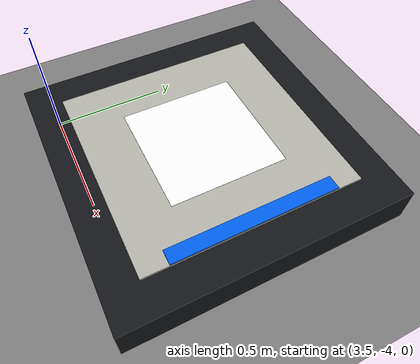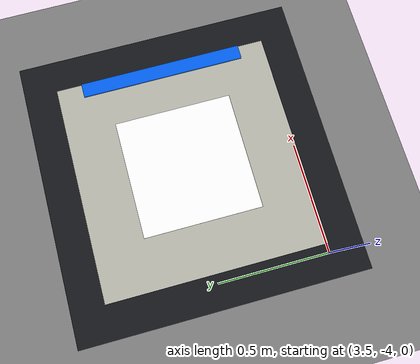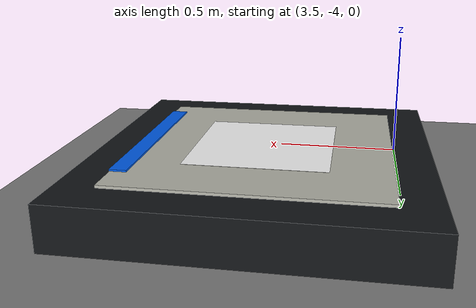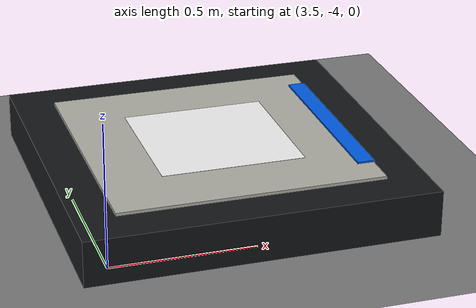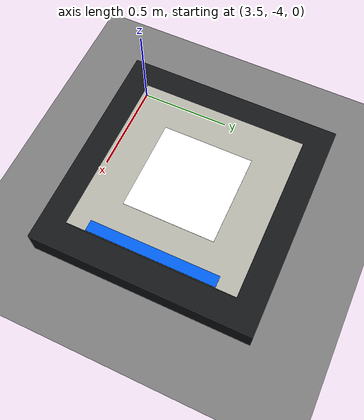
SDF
<?xml version="1.0" encoding="UTF-8"?>
<sdf version="1.9">
  <world name="fractal_aruco_landing">
    <physics type="ode">
      <max_step_size>0.004</max_step_size>
      <real_time_factor>1.0</real_time_factor>
      <real_time_update_rate>250</real_time_update_rate>
    </physics>
    <gravity>0 0 -9.8</gravity>
    <magnetic_field>6e-06 2.3e-05 -4.2e-05</magnetic_field>
    <atmosphere type="adiabatic"/>

    <scene>
      <grid>false</grid>
      <ambient>0.8 0.8 0.8 1</ambient>
      <background>0.7 0.7 0.7 1</background>
      <shadows>false</shadows>
    </scene>

    <model name="ground_plane">
      <static>true</static>
      <link name="link">
        <collision name="collision">
          <geometry>
            <plane>
              <normal>0 0 1</normal>
              <size>1 1</size>
            </plane>
          </geometry>
          <surface>
            <friction><ode/></friction>
            <bounce/>
            <contact/>
          </surface>
        </collision>
        <visual name="visual">
          <geometry>
            <plane>
              <normal>0 0 1</normal>
              <size>500 500</size>
            </plane>
          </geometry>
          <material>
            <ambient>0.5 0.5 0.5 1</ambient>
            <diffuse>0.5 0.5 0.5 1</diffuse>
            <specular>0.5 0.5 0.5 1</specular>
          </material>
        </visual>
        <pose>0 0 0 0 0 0</pose>
        <inertial>
          <pose>0 0 0 0 0 0</pose>
          <mass>1</mass>
          <inertia>
            <ixx>1</ixx><ixy>0</ixy><ixz>0</ixz>
            <iyy>1</iyy><iyz>0</iyz><izz>1</izz>
          </inertia>
        </inertial>
        <enable_wind>false</enable_wind>
      </link>
      <pose>0 0 0 0 0 0</pose>
      <self_collide>false</self_collide>
    </model>

    <light name="sunUTC" type="directional">
      <pose>0 0 500 0 0 0</pose>
      <cast_shadows>false</cast_shadows>
      <intensity>1</intensity>
      <direction>0.001 0.625 -0.78</direction>
      <diffuse>0.904 0.904 0.904 1</diffuse>
      <specular>0.271 0.271 0.271 1</specular>
      <attenuation>
        <range>2000</range>
        <linear>0</linear>
        <constant>1</constant>
        <quadratic>0</quadratic>
      </attenuation>
    </light>

    <spherical_coordinates>
      <surface_model>EARTH_WGS84</surface_model>
      <world_frame_orientation>ENU</world_frame_orientation>
      <latitude_deg>47.397971057728974</latitude_deg>
      <longitude_deg>8.546163739800146</longitude_deg>
      <elevation>0</elevation>
    </spherical_coordinates>

    <include>
      <uri>model://dib_box_landing_pad</uri>
      <name>landing_box_fractal_aruco</name>
      <pose>4.0 -3.5 0 0 0 0</pose>
    </include>
  </world>
</sdf>

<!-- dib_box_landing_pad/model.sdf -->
<sdf version="1.9">
  <model name="dib_box_landing_pad">
    <static>true</static>
    <pose>0 0 0 0 0 0</pose>

    <link name="box_body">
      <collision name="box_collision">
        <pose>0 0 0.08 0 0 0</pose>
        <geometry>
          <box>
            <size>1.20 1.20 0.16</size>
          </box>
        </geometry>
      </collision>

      <visual name="box_base_visual">
        <pose>0 0 0.08 0 0 0</pose>
        <geometry>
          <box>
            <size>1.20 1.20 0.16</size>
          </box>
        </geometry>
        <material>
          <ambient>0.08 0.09 0.10 1</ambient>
          <diffuse>0.08 0.09 0.10 1</diffuse>
          <specular>0.25 0.25 0.25 1</specular>
        </material>
      </visual>

      <visual name="landing_surface_visual">
        <pose>0 0 0.164 0 0 0</pose>
        <geometry>
          <box>
            <size>0.92 0.92 0.012</size>
          </box>
        </geometry>
        <material>
          <ambient>0.72 0.72 0.68 1</ambient>
          <diffuse>0.72 0.72 0.68 1</diffuse>
          <specular>0.15 0.15 0.15 1</specular>
        </material>
      </visual>

      <visual name="marker_visual">
        <pose>0 0 0.172 0 0 0</pose>
        <geometry>
          <plane>
            <normal>0 0 1</normal>
            <size>0.50 0.50</size>
          </plane>
        </geometry>
        <material>
          <diffuse>1 1 1 1</diffuse>
          <specular>0.2 0.2 0.2 1</specular>
          <pbr>
            <metal>
              <albedo_map>model://fractal_aruco_marker/marker.png</albedo_map>
            </metal>
          </pbr>
        </material>
      </visual>

      <visual name="front_orientation_mark_visual">
        <pose>0.43 0 0.176 0 0 0</pose>
        <geometry>
          <box>
            <size>0.06 0.70 0.006</size>
          </box>
        </geometry>
        <material>
          <ambient>0.0 0.38 0.95 1</ambient>
          <diffuse>0.0 0.38 0.95 1</diffuse>
          <specular>0.1 0.1 0.1 1</specular>
        </material>
      </visual>
    </link>
  </model>
</sdf>
